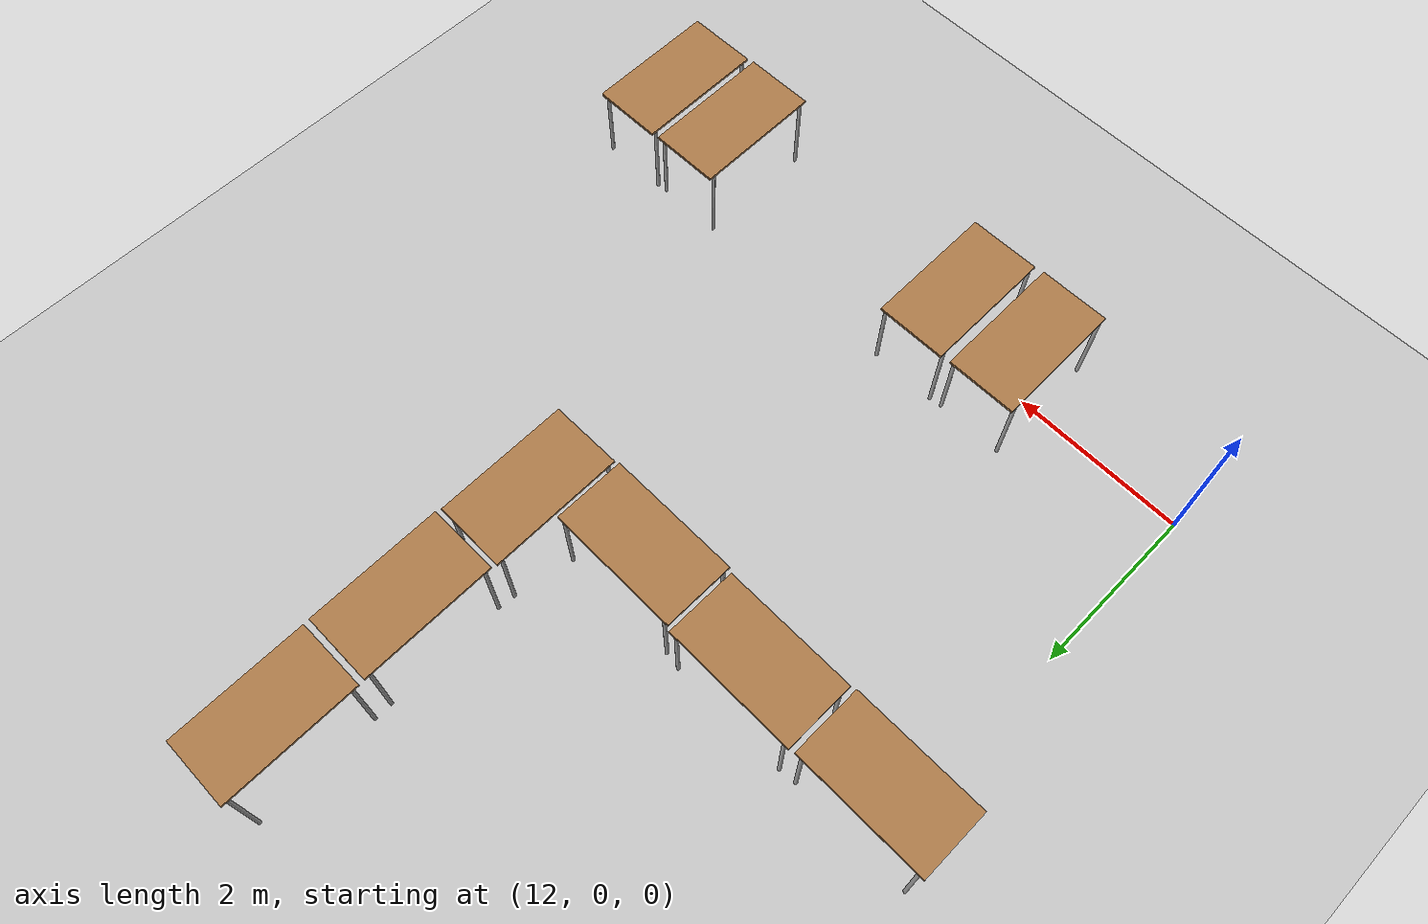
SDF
<sdf version="1.6">
 <world name="default">
  <model name="ground_plane">
   <static>1</static>
   <link name="link">
    <collision name="collision">
     <geometry><plane><normal>0 0 1</normal><size>100 100</size></plane></geometry>
     <surface><friction><ode><mu>100</mu><mu2>50</mu2></ode></friction></surface>
    </collision>
    <visual name="visual">
     <cast_shadows>0</cast_shadows>
     <geometry><plane><normal>0 0 1</normal><size>100 100</size></plane></geometry>
     <material>
      <script><uri>file://media/materials/scripts/gazebo.material</uri><name>Gazebo/Grey</name></script>
     </material>
    </visual>
   </link>
  </model>
  <model name="table_clone_0">
   <static>1</static>
   <link name="link">
    <collision name="surface">
     <pose>0 0 1 0 -0 0</pose>
     <geometry><box><size>1.5 0.8 0.03</size></box></geometry>
     <surface><friction><ode><mu>0.6</mu><mu2>0.6</mu2></ode></friction></surface>
    </collision>
    <visual name="visual1">
     <pose>0 0 1 0 -0 0</pose>
     <geometry><box><size>1.5 0.8 0.03</size></box></geometry>
     <material>
      <script><uri>file://media/materials/scripts/gazebo.material</uri><name>Gazebo/Wood</name></script>
     </material>
    </visual>
    <collision name="front_left_leg">
     <pose>0.68 0.38 0.5 0 -0 0</pose>
     <geometry><cylinder><radius>0.02</radius><length>1</length></cylinder></geometry>
    </collision>
    <visual name="front_left_leg">
     <pose>0.68 0.38 0.5 0 -0 0</pose>
     <geometry><cylinder><radius>0.02</radius><length>1</length></cylinder></geometry>
     <material>
      <script><uri>file://media/materials/scripts/gazebo.material</uri><name>Gazebo/Grey</name></script>
     </material>
    </visual>
    <collision name="front_right_leg">
     <pose>0.68 -0.38 0.5 0 -0 0</pose>
     <geometry><cylinder><radius>0.02</radius><length>1</length></cylinder></geometry>
    </collision>
    <visual name="front_right_leg">
     <pose>0.68 -0.38 0.5 0 -0 0</pose>
     <geometry><cylinder><radius>0.02</radius><length>1</length></cylinder></geometry>
     <material>
      <script><uri>file://media/materials/scripts/gazebo.material</uri><name>Gazebo/Grey</name></script>
     </material>
    </visual>
    <collision name="back_right_leg">
     <pose>-0.68 -0.38 0.5 0 -0 0</pose>
     <geometry><cylinder><radius>0.02</radius><length>1</length></cylinder></geometry>
    </collision>
    <visual name="back_right_leg">
     <pose>-0.68 -0.38 0.5 0 -0 0</pose>
     <geometry><cylinder><radius>0.02</radius><length>1</length></cylinder></geometry>
     <material>
      <script><uri>file://media/materials/scripts/gazebo.material</uri><name>Gazebo/Grey</name></script>
     </material>
    </visual>
    <collision name="back_left_leg">
     <pose>-0.68 0.38 0.5 0 -0 0</pose>
     <geometry><cylinder><radius>0.02</radius><length>1</length></cylinder></geometry>
    </collision>
    <visual name="back_left_leg">
     <pose>-0.68 0.38 0.5 0 -0 0</pose>
     <geometry><cylinder><radius>0.02</radius><length>1</length></cylinder></geometry>
     <material>
      <script><uri>file://media/materials/scripts/gazebo.material</uri><name>Gazebo/Grey</name></script>
     </material>
    </visual>
   </link>
   <pose>12.2451 4.23712 0 0 -0 0</pose>
  </model>
  <model name="table_clone_1">
   <static>1</static>
   <link name="link">
    <collision name="surface">
     <pose>0 0 1 0 -0 0</pose>
     <geometry><box><size>1.5 0.8 0.03</size></box></geometry>
     <surface><friction><ode><mu>0.6</mu><mu2>0.6</mu2></ode></friction></surface>
    </collision>
    <visual name="visual1">
     <pose>0 0 1 0 -0 0</pose>
     <geometry><box><size>1.5 0.8 0.03</size></box></geometry>
     <material>
      <script><uri>file://media/materials/scripts/gazebo.material</uri><name>Gazebo/Wood</name></script>
     </material>
    </visual>
    <collision name="front_left_leg">
     <pose>0.68 0.38 0.5 0 -0 0</pose>
     <geometry><cylinder><radius>0.02</radius><length>1</length></cylinder></geometry>
    </collision>
    <visual name="front_left_leg">
     <pose>0.68 0.38 0.5 0 -0 0</pose>
     <geometry><cylinder><radius>0.02</radius><length>1</length></cylinder></geometry>
     <material>
      <script><uri>file://media/materials/scripts/gazebo.material</uri><name>Gazebo/Grey</name></script>
     </material>
    </visual>
    <collision name="front_right_leg">
     <pose>0.68 -0.38 0.5 0 -0 0</pose>
     <geometry><cylinder><radius>0.02</radius><length>1</length></cylinder></geometry>
    </collision>
    <visual name="front_right_leg">
     <pose>0.68 -0.38 0.5 0 -0 0</pose>
     <geometry><cylinder><radius>0.02</radius><length>1</length></cylinder></geometry>
     <material>
      <script><uri>file://media/materials/scripts/gazebo.material</uri><name>Gazebo/Grey</name></script>
     </material>
    </visual>
    <collision name="back_right_leg">
     <pose>-0.68 -0.38 0.5 0 -0 0</pose>
     <geometry><cylinder><radius>0.02</radius><length>1</length></cylinder></geometry>
    </collision>
    <visual name="back_right_leg">
     <pose>-0.68 -0.38 0.5 0 -0 0</pose>
     <geometry><cylinder><radius>0.02</radius><length>1</length></cylinder></geometry>
     <material>
      <script><uri>file://media/materials/scripts/gazebo.material</uri><name>Gazebo/Grey</name></script>
     </material>
    </visual>
    <collision name="back_left_leg">
     <pose>-0.68 0.38 0.5 0 -0 0</pose>
     <geometry><cylinder><radius>0.02</radius><length>1</length></cylinder></geometry>
    </collision>
    <visual name="back_left_leg">
     <pose>-0.68 0.38 0.5 0 -0 0</pose>
     <geometry><cylinder><radius>0.02</radius><length>1</length></cylinder></geometry>
     <material>
      <script><uri>file://media/materials/scripts/gazebo.material</uri><name>Gazebo/Grey</name></script>
     </material>
    </visual>
   </link>
   <pose>13.8016 4.2539 0 0 -0 0</pose>
  </model>
  <model name="table_clone_2">
   <static>1</static>
   <link name="link">
    <collision name="surface">
     <pose>0 0 1 0 -0 0</pose>
     <geometry><box><size>1.5 0.8 0.03</size></box></geometry>
     <surface><friction><ode><mu>0.6</mu><mu2>0.6</mu2></ode></friction></surface>
    </collision>
    <visual name="visual1">
     <pose>0 0 1 0 -0 0</pose>
     <geometry><box><size>1.5 0.8 0.03</size></box></geometry>
     <material>
      <script><uri>file://media/materials/scripts/gazebo.material</uri><name>Gazebo/Wood</name></script>
     </material>
    </visual>
    <collision name="front_left_leg">
     <pose>0.68 0.38 0.5 0 -0 0</pose>
     <geometry><cylinder><radius>0.02</radius><length>1</length></cylinder></geometry>
    </collision>
    <visual name="front_left_leg">
     <pose>0.68 0.38 0.5 0 -0 0</pose>
     <geometry><cylinder><radius>0.02</radius><length>1</length></cylinder></geometry>
     <material>
      <script><uri>file://media/materials/scripts/gazebo.material</uri><name>Gazebo/Grey</name></script>
     </material>
    </visual>
    <collision name="front_right_leg">
     <pose>0.68 -0.38 0.5 0 -0 0</pose>
     <geometry><cylinder><radius>0.02</radius><length>1</length></cylinder></geometry>
    </collision>
    <visual name="front_right_leg">
     <pose>0.68 -0.38 0.5 0 -0 0</pose>
     <geometry><cylinder><radius>0.02</radius><length>1</length></cylinder></geometry>
     <material>
      <script><uri>file://media/materials/scripts/gazebo.material</uri><name>Gazebo/Grey</name></script>
     </material>
    </visual>
    <collision name="back_right_leg">
     <pose>-0.68 -0.38 0.5 0 -0 0</pose>
     <geometry><cylinder><radius>0.02</radius><length>1</length></cylinder></geometry>
    </collision>
    <visual name="back_right_leg">
     <pose>-0.68 -0.38 0.5 0 -0 0</pose>
     <geometry><cylinder><radius>0.02</radius><length>1</length></cylinder></geometry>
     <material>
      <script><uri>file://media/materials/scripts/gazebo.material</uri><name>Gazebo/Grey</name></script>
     </material>
    </visual>
    <collision name="back_left_leg">
     <pose>-0.68 0.38 0.5 0 -0 0</pose>
     <geometry><cylinder><radius>0.02</radius><length>1</length></cylinder></geometry>
    </collision>
    <visual name="back_left_leg">
     <pose>-0.68 0.38 0.5 0 -0 0</pose>
     <geometry><cylinder><radius>0.02</radius><length>1</length></cylinder></geometry>
     <material>
      <script><uri>file://media/materials/scripts/gazebo.material</uri><name>Gazebo/Grey</name></script>
     </material>
    </visual>
   </link>
   <pose>15.3509 4.22138 0 0 -0 0</pose>
  </model>
  <model name="table_clone_3_clone_1">
   <static>1</static>
   <link name="link">
    <collision name="surface">
     <pose>0 0 1 0 -0 0</pose>
     <geometry><box><size>1.5 0.8 0.03</size></box></geometry>
     <surface><friction><ode><mu>0.6</mu><mu2>0.6</mu2></ode></friction></surface>
    </collision>
    <visual name="visual1">
     <pose>0 0 1 0 -0 0</pose>
     <geometry><box><size>1.5 0.8 0.03</size></box></geometry>
     <material>
      <script><uri>file://media/materials/scripts/gazebo.material</uri><name>Gazebo/Wood</name></script>
     </material>
    </visual>
    <collision name="front_left_leg">
     <pose>0.68 0.38 0.5 0 -0 0</pose>
     <geometry><cylinder><radius>0.02</radius><length>1</length></cylinder></geometry>
    </collision>
    <visual name="front_left_leg">
     <pose>0.68 0.38 0.5 0 -0 0</pose>
     <geometry><cylinder><radius>0.02</radius><length>1</length></cylinder></geometry>
     <material>
      <script><uri>file://media/materials/scripts/gazebo.material</uri><name>Gazebo/Grey</name></script>
     </material>
    </visual>
    <collision name="front_right_leg">
     <pose>0.68 -0.38 0.5 0 -0 0</pose>
     <geometry><cylinder><radius>0.02</radius><length>1</length></cylinder></geometry>
    </collision>
    <visual name="front_right_leg">
     <pose>0.68 -0.38 0.5 0 -0 0</pose>
     <geometry><cylinder><radius>0.02</radius><length>1</length></cylinder></geometry>
     <material>
      <script><uri>file://media/materials/scripts/gazebo.material</uri><name>Gazebo/Grey</name></script>
     </material>
    </visual>
    <collision name="back_right_leg">
     <pose>-0.68 -0.38 0.5 0 -0 0</pose>
     <geometry><cylinder><radius>0.02</radius><length>1</length></cylinder></geometry>
    </collision>
    <visual name="back_right_leg">
     <pose>-0.68 -0.38 0.5 0 -0 0</pose>
     <geometry><cylinder><radius>0.02</radius><length>1</length></cylinder></geometry>
     <material>
      <script><uri>file://media/materials/scripts/gazebo.material</uri><name>Gazebo/Grey</name></script>
     </material>
    </visual>
    <collision name="back_left_leg">
     <pose>-0.68 0.38 0.5 0 -0 0</pose>
     <geometry><cylinder><radius>0.02</radius><length>1</length></cylinder></geometry>
    </collision>
    <visual name="back_left_leg">
     <pose>-0.68 0.38 0.5 0 -0 0</pose>
     <geometry><cylinder><radius>0.02</radius><length>1</length></cylinder></geometry>
     <material>
      <script><uri>file://media/materials/scripts/gazebo.material</uri><name>Gazebo/Grey</name></script>
     </material>
    </visual>
   </link>
   <pose>16.5431 4.59479 0 0 0 -1.56261</pose>
  </model>
  <model name="table_clone_3_clone_2">
   <static>1</static>
   <link name="link">
    <collision name="surface">
     <pose>0 0 1 0 -0 0</pose>
     <geometry><box><size>1.5 0.8 0.03</size></box></geometry>
     <surface><friction><ode><mu>0.6</mu><mu2>0.6</mu2></ode></friction></surface>
    </collision>
    <visual name="visual1">
     <pose>0 0 1 0 -0 0</pose>
     <geometry><box><size>1.5 0.8 0.03</size></box></geometry>
     <material>
      <script><uri>file://media/materials/scripts/gazebo.material</uri><name>Gazebo/Wood</name></script>
     </material>
    </visual>
    <collision name="front_left_leg">
     <pose>0.68 0.38 0.5 0 -0 0</pose>
     <geometry><cylinder><radius>0.02</radius><length>1</length></cylinder></geometry>
    </collision>
    <visual name="front_left_leg">
     <pose>0.68 0.38 0.5 0 -0 0</pose>
     <geometry><cylinder><radius>0.02</radius><length>1</length></cylinder></geometry>
     <material>
      <script><uri>file://media/materials/scripts/gazebo.material</uri><name>Gazebo/Grey</name></script>
     </material>
    </visual>
    <collision name="front_right_leg">
     <pose>0.68 -0.38 0.5 0 -0 0</pose>
     <geometry><cylinder><radius>0.02</radius><length>1</length></cylinder></geometry>
    </collision>
    <visual name="front_right_leg">
     <pose>0.68 -0.38 0.5 0 -0 0</pose>
     <geometry><cylinder><radius>0.02</radius><length>1</length></cylinder></geometry>
     <material>
      <script><uri>file://media/materials/scripts/gazebo.material</uri><name>Gazebo/Grey</name></script>
     </material>
    </visual>
    <collision name="back_right_leg">
     <pose>-0.68 -0.38 0.5 0 -0 0</pose>
     <geometry><cylinder><radius>0.02</radius><length>1</length></cylinder></geometry>
    </collision>
    <visual name="back_right_leg">
     <pose>-0.68 -0.38 0.5 0 -0 0</pose>
     <geometry><cylinder><radius>0.02</radius><length>1</length></cylinder></geometry>
     <material>
      <script><uri>file://media/materials/scripts/gazebo.material</uri><name>Gazebo/Grey</name></script>
     </material>
    </visual>
    <collision name="back_left_leg">
     <pose>-0.68 0.38 0.5 0 -0 0</pose>
     <geometry><cylinder><radius>0.02</radius><length>1</length></cylinder></geometry>
    </collision>
    <visual name="back_left_leg">
     <pose>-0.68 0.38 0.5 0 -0 0</pose>
     <geometry><cylinder><radius>0.02</radius><length>1</length></cylinder></geometry>
     <material>
      <script><uri>file://media/materials/scripts/gazebo.material</uri><name>Gazebo/Grey</name></script>
     </material>
    </visual>
   </link>
   <pose>16.5502 6.14759 0 0 0 -1.56261</pose>
  </model>
  <model name="table_clone_3_clone_3">
   <static>1</static>
   <link name="link">
    <collision name="surface">
     <pose>0 0 1 0 -0 0</pose>
     <geometry><box><size>1.5 0.8 0.03</size></box></geometry>
     <surface><friction><ode><mu>0.6</mu><mu2>0.6</mu2></ode></friction></surface>
    </collision>
    <visual name="visual1">
     <pose>0 0 1 0 -0 0</pose>
     <geometry><box><size>1.5 0.8 0.03</size></box></geometry>
     <material>
      <script><uri>file://media/materials/scripts/gazebo.material</uri><name>Gazebo/Wood</name></script>
     </material>
    </visual>
    <collision name="front_left_leg">
     <pose>0.68 0.38 0.5 0 -0 0</pose>
     <geometry><cylinder><radius>0.02</radius><length>1</length></cylinder></geometry>
    </collision>
    <visual name="front_left_leg">
     <pose>0.68 0.38 0.5 0 -0 0</pose>
     <geometry><cylinder><radius>0.02</radius><length>1</length></cylinder></geometry>
     <material>
      <script><uri>file://media/materials/scripts/gazebo.material</uri><name>Gazebo/Grey</name></script>
     </material>
    </visual>
    <collision name="front_right_leg">
     <pose>0.68 -0.38 0.5 0 -0 0</pose>
     <geometry><cylinder><radius>0.02</radius><length>1</length></cylinder></geometry>
    </collision>
    <visual name="front_right_leg">
     <pose>0.68 -0.38 0.5 0 -0 0</pose>
     <geometry><cylinder><radius>0.02</radius><length>1</length></cylinder></geometry>
     <material>
      <script><uri>file://media/materials/scripts/gazebo.material</uri><name>Gazebo/Grey</name></script>
     </material>
    </visual>
    <collision name="back_right_leg">
     <pose>-0.68 -0.38 0.5 0 -0 0</pose>
     <geometry><cylinder><radius>0.02</radius><length>1</length></cylinder></geometry>
    </collision>
    <visual name="back_right_leg">
     <pose>-0.68 -0.38 0.5 0 -0 0</pose>
     <geometry><cylinder><radius>0.02</radius><length>1</length></cylinder></geometry>
     <material>
      <script><uri>file://media/materials/scripts/gazebo.material</uri><name>Gazebo/Grey</name></script>
     </material>
    </visual>
    <collision name="back_left_leg">
     <pose>-0.68 0.38 0.5 0 -0 0</pose>
     <geometry><cylinder><radius>0.02</radius><length>1</length></cylinder></geometry>
    </collision>
    <visual name="back_left_leg">
     <pose>-0.68 0.38 0.5 0 -0 0</pose>
     <geometry><cylinder><radius>0.02</radius><length>1</length></cylinder></geometry>
     <material>
      <script><uri>file://media/materials/scripts/gazebo.material</uri><name>Gazebo/Grey</name></script>
     </material>
    </visual>
   </link>
   <pose>16.5327 7.71091 0 0 0 -1.56261</pose>
  </model>
  <model name="table_clone_3_clone_4">
   <static>1</static>
   <link name="link">
    <collision name="surface">
     <pose>0 0 1 0 -0 0</pose>
     <geometry><box><size>1.5 0.8 0.03</size></box></geometry>
     <surface><friction><ode><mu>0.6</mu><mu2>0.6</mu2></ode></friction></surface>
    </collision>
    <visual name="visual1">
     <pose>0 0 1 0 -0 0</pose>
     <geometry><box><size>1.5 0.8 0.03</size></box></geometry>
     <material>
      <script><uri>file://media/materials/scripts/gazebo.material</uri><name>Gazebo/Wood</name></script>
     </material>
    </visual>
    <collision name="front_left_leg">
     <pose>0.68 0.38 0.5 0 -0 0</pose>
     <geometry><cylinder><radius>0.02</radius><length>1</length></cylinder></geometry>
    </collision>
    <visual name="front_left_leg">
     <pose>0.68 0.38 0.5 0 -0 0</pose>
     <geometry><cylinder><radius>0.02</radius><length>1</length></cylinder></geometry>
     <material>
      <script><uri>file://media/materials/scripts/gazebo.material</uri><name>Gazebo/Grey</name></script>
     </material>
    </visual>
    <collision name="front_right_leg">
     <pose>0.68 -0.38 0.5 0 -0 0</pose>
     <geometry><cylinder><radius>0.02</radius><length>1</length></cylinder></geometry>
    </collision>
    <visual name="front_right_leg">
     <pose>0.68 -0.38 0.5 0 -0 0</pose>
     <geometry><cylinder><radius>0.02</radius><length>1</length></cylinder></geometry>
     <material>
      <script><uri>file://media/materials/scripts/gazebo.material</uri><name>Gazebo/Grey</name></script>
     </material>
    </visual>
    <collision name="back_right_leg">
     <pose>-0.68 -0.38 0.5 0 -0 0</pose>
     <geometry><cylinder><radius>0.02</radius><length>1</length></cylinder></geometry>
    </collision>
    <visual name="back_right_leg">
     <pose>-0.68 -0.38 0.5 0 -0 0</pose>
     <geometry><cylinder><radius>0.02</radius><length>1</length></cylinder></geometry>
     <material>
      <script><uri>file://media/materials/scripts/gazebo.material</uri><name>Gazebo/Grey</name></script>
     </material>
    </visual>
    <collision name="back_left_leg">
     <pose>-0.68 0.38 0.5 0 -0 0</pose>
     <geometry><cylinder><radius>0.02</radius><length>1</length></cylinder></geometry>
    </collision>
    <visual name="back_left_leg">
     <pose>-0.68 0.38 0.5 0 -0 0</pose>
     <geometry><cylinder><radius>0.02</radius><length>1</length></cylinder></geometry>
     <material>
      <script><uri>file://media/materials/scripts/gazebo.material</uri><name>Gazebo/Grey</name></script>
     </material>
    </visual>
   </link>
   <pose>19.1611 0.108929 0 0 0 -1.56261</pose>
  </model>
  <model name="table_clone_3_clone_5">
   <static>1</static>
   <link name="link">
    <collision name="surface">
     <pose>0 0 1 0 -0 0</pose>
     <geometry><box><size>1.5 0.8 0.03</size></box></geometry>
     <surface><friction><ode><mu>0.6</mu><mu2>0.6</mu2></ode></friction></surface>
    </collision>
    <visual name="visual1">
     <pose>0 0 1 0 -0 0</pose>
     <geometry><box><size>1.5 0.8 0.03</size></box></geometry>
     <material>
      <script><uri>file://media/materials/scripts/gazebo.material</uri><name>Gazebo/Wood</name></script>
     </material>
    </visual>
    <collision name="front_left_leg">
     <pose>0.68 0.38 0.5 0 -0 0</pose>
     <geometry><cylinder><radius>0.02</radius><length>1</length></cylinder></geometry>
    </collision>
    <visual name="front_left_leg">
     <pose>0.68 0.38 0.5 0 -0 0</pose>
     <geometry><cylinder><radius>0.02</radius><length>1</length></cylinder></geometry>
     <material>
      <script><uri>file://media/materials/scripts/gazebo.material</uri><name>Gazebo/Grey</name></script>
     </material>
    </visual>
    <collision name="front_right_leg">
     <pose>0.68 -0.38 0.5 0 -0 0</pose>
     <geometry><cylinder><radius>0.02</radius><length>1</length></cylinder></geometry>
    </collision>
    <visual name="front_right_leg">
     <pose>0.68 -0.38 0.5 0 -0 0</pose>
     <geometry><cylinder><radius>0.02</radius><length>1</length></cylinder></geometry>
     <material>
      <script><uri>file://media/materials/scripts/gazebo.material</uri><name>Gazebo/Grey</name></script>
     </material>
    </visual>
    <collision name="back_right_leg">
     <pose>-0.68 -0.38 0.5 0 -0 0</pose>
     <geometry><cylinder><radius>0.02</radius><length>1</length></cylinder></geometry>
    </collision>
    <visual name="back_right_leg">
     <pose>-0.68 -0.38 0.5 0 -0 0</pose>
     <geometry><cylinder><radius>0.02</radius><length>1</length></cylinder></geometry>
     <material>
      <script><uri>file://media/materials/scripts/gazebo.material</uri><name>Gazebo/Grey</name></script>
     </material>
    </visual>
    <collision name="back_left_leg">
     <pose>-0.68 0.38 0.5 0 -0 0</pose>
     <geometry><cylinder><radius>0.02</radius><length>1</length></cylinder></geometry>
    </collision>
    <visual name="back_left_leg">
     <pose>-0.68 0.38 0.5 0 -0 0</pose>
     <geometry><cylinder><radius>0.02</radius><length>1</length></cylinder></geometry>
     <material>
      <script><uri>file://media/materials/scripts/gazebo.material</uri><name>Gazebo/Grey</name></script>
     </material>
    </visual>
   </link>
   <pose>18.2838 0.084938 0 0 0 -1.56261</pose>
  </model>
  <model name="table_clone_3_clone_6">
   <static>1</static>
   <link name="link">
    <collision name="surface">
     <pose>0 0 1 0 -0 0</pose>
     <geometry><box><size>1.5 0.8 0.03</size></box></geometry>
     <surface><friction><ode><mu>0.6</mu><mu2>0.6</mu2></ode></friction></surface>
    </collision>
    <visual name="visual1">
     <pose>0 0 1 0 -0 0</pose>
     <geometry><box><size>1.5 0.8 0.03</size></box></geometry>
     <material>
      <script><uri>file://media/materials/scripts/gazebo.material</uri><name>Gazebo/Wood</name></script>
     </material>
    </visual>
    <collision name="front_left_leg">
     <pose>0.68 0.38 0.5 0 -0 0</pose>
     <geometry><cylinder><radius>0.02</radius><length>1</length></cylinder></geometry>
    </collision>
    <visual name="front_left_leg">
     <pose>0.68 0.38 0.5 0 -0 0</pose>
     <geometry><cylinder><radius>0.02</radius><length>1</length></cylinder></geometry>
     <material>
      <script><uri>file://media/materials/scripts/gazebo.material</uri><name>Gazebo/Grey</name></script>
     </material>
    </visual>
    <collision name="front_right_leg">
     <pose>0.68 -0.38 0.5 0 -0 0</pose>
     <geometry><cylinder><radius>0.02</radius><length>1</length></cylinder></geometry>
    </collision>
    <visual name="front_right_leg">
     <pose>0.68 -0.38 0.5 0 -0 0</pose>
     <geometry><cylinder><radius>0.02</radius><length>1</length></cylinder></geometry>
     <material>
      <script><uri>file://media/materials/scripts/gazebo.material</uri><name>Gazebo/Grey</name></script>
     </material>
    </visual>
    <collision name="back_right_leg">
     <pose>-0.68 -0.38 0.5 0 -0 0</pose>
     <geometry><cylinder><radius>0.02</radius><length>1</length></cylinder></geometry>
    </collision>
    <visual name="back_right_leg">
     <pose>-0.68 -0.38 0.5 0 -0 0</pose>
     <geometry><cylinder><radius>0.02</radius><length>1</length></cylinder></geometry>
     <material>
      <script><uri>file://media/materials/scripts/gazebo.material</uri><name>Gazebo/Grey</name></script>
     </material>
    </visual>
    <collision name="back_left_leg">
     <pose>-0.68 0.38 0.5 0 -0 0</pose>
     <geometry><cylinder><radius>0.02</radius><length>1</length></cylinder></geometry>
    </collision>
    <visual name="back_left_leg">
     <pose>-0.68 0.38 0.5 0 -0 0</pose>
     <geometry><cylinder><radius>0.02</radius><length>1</length></cylinder></geometry>
     <material>
      <script><uri>file://media/materials/scripts/gazebo.material</uri><name>Gazebo/Grey</name></script>
     </material>
    </visual>
   </link>
   <pose>15.1035 -0.016075 0 0 0 -1.56261</pose>
  </model>
  <model name="table_clone_3_clone_7">
   <static>1</static>
   <link name="link">
    <collision name="surface">
     <pose>0 0 1 0 -0 0</pose>
     <geometry><box><size>1.5 0.8 0.03</size></box></geometry>
     <surface><friction><ode><mu>0.6</mu><mu2>0.6</mu2></ode></friction></surface>
    </collision>
    <visual name="visual1">
     <pose>0 0 1 0 -0 0</pose>
     <geometry><box><size>1.5 0.8 0.03</size></box></geometry>
     <material>
      <script><uri>file://media/materials/scripts/gazebo.material</uri><name>Gazebo/Wood</name></script>
     </material>
    </visual>
    <collision name="front_left_leg">
     <pose>0.68 0.38 0.5 0 -0 0</pose>
     <geometry><cylinder><radius>0.02</radius><length>1</length></cylinder></geometry>
    </collision>
    <visual name="front_left_leg">
     <pose>0.68 0.38 0.5 0 -0 0</pose>
     <geometry><cylinder><radius>0.02</radius><length>1</length></cylinder></geometry>
     <material>
      <script><uri>file://media/materials/scripts/gazebo.material</uri><name>Gazebo/Grey</name></script>
     </material>
    </visual>
    <collision name="front_right_leg">
     <pose>0.68 -0.38 0.5 0 -0 0</pose>
     <geometry><cylinder><radius>0.02</radius><length>1</length></cylinder></geometry>
    </collision>
    <visual name="front_right_leg">
     <pose>0.68 -0.38 0.5 0 -0 0</pose>
     <geometry><cylinder><radius>0.02</radius><length>1</length></cylinder></geometry>
     <material>
      <script><uri>file://media/materials/scripts/gazebo.material</uri><name>Gazebo/Grey</name></script>
     </material>
    </visual>
    <collision name="back_right_leg">
     <pose>-0.68 -0.38 0.5 0 -0 0</pose>
     <geometry><cylinder><radius>0.02</radius><length>1</length></cylinder></geometry>
    </collision>
    <visual name="back_right_leg">
     <pose>-0.68 -0.38 0.5 0 -0 0</pose>
     <geometry><cylinder><radius>0.02</radius><length>1</length></cylinder></geometry>
     <material>
      <script><uri>file://media/materials/scripts/gazebo.material</uri><name>Gazebo/Grey</name></script>
     </material>
    </visual>
    <collision name="back_left_leg">
     <pose>-0.68 0.38 0.5 0 -0 0</pose>
     <geometry><cylinder><radius>0.02</radius><length>1</length></cylinder></geometry>
    </collision>
    <visual name="back_left_leg">
     <pose>-0.68 0.38 0.5 0 -0 0</pose>
     <geometry><cylinder><radius>0.02</radius><length>1</length></cylinder></geometry>
     <material>
      <script><uri>file://media/materials/scripts/gazebo.material</uri><name>Gazebo/Grey</name></script>
     </material>
    </visual>
   </link>
   <pose>14.2009 -0.040363 0 0 0 -1.56261</pose>
  </model>
 </world>
</sdf>
